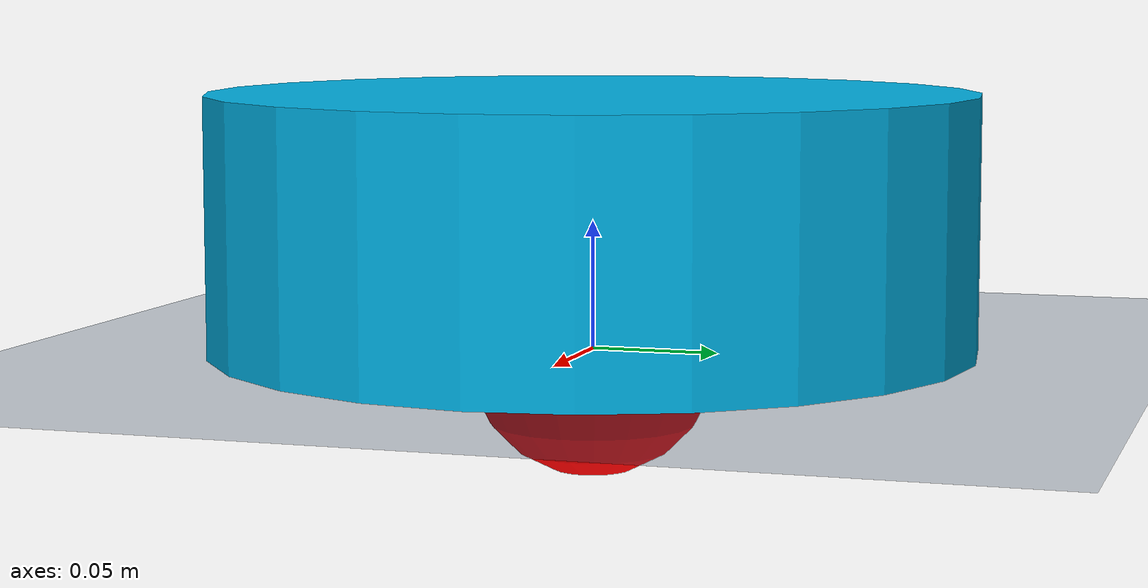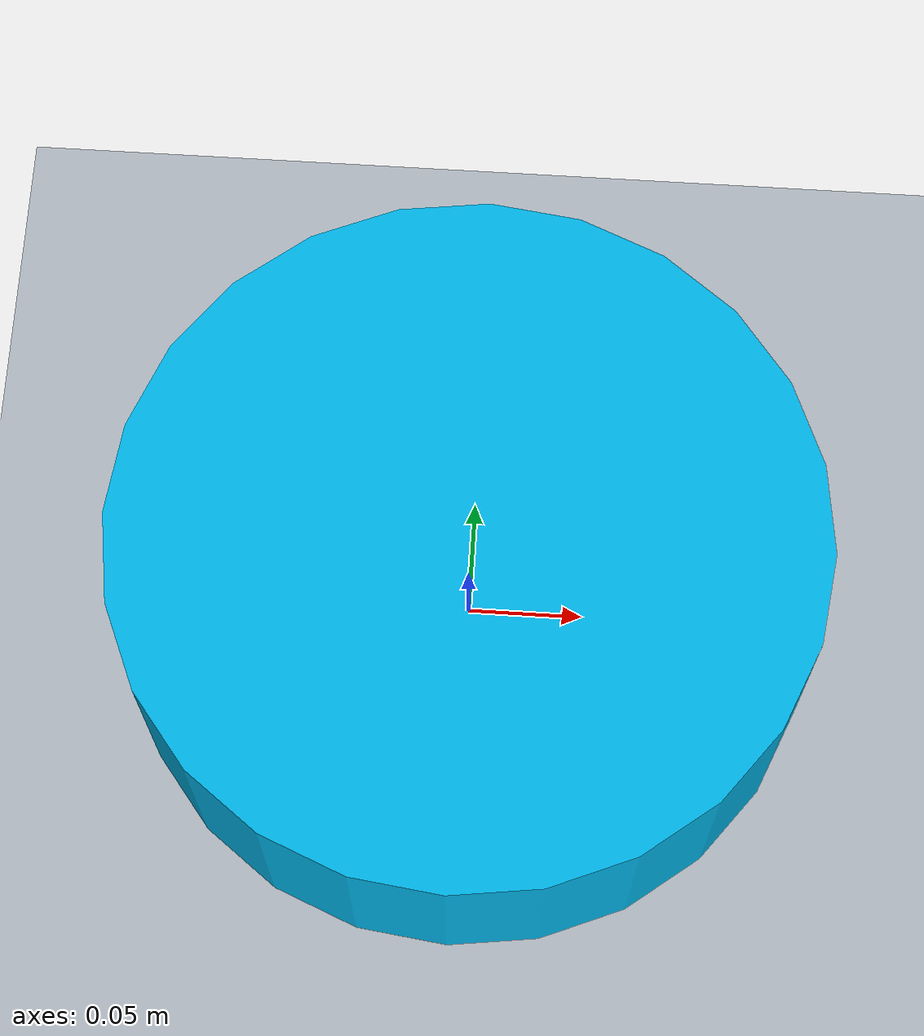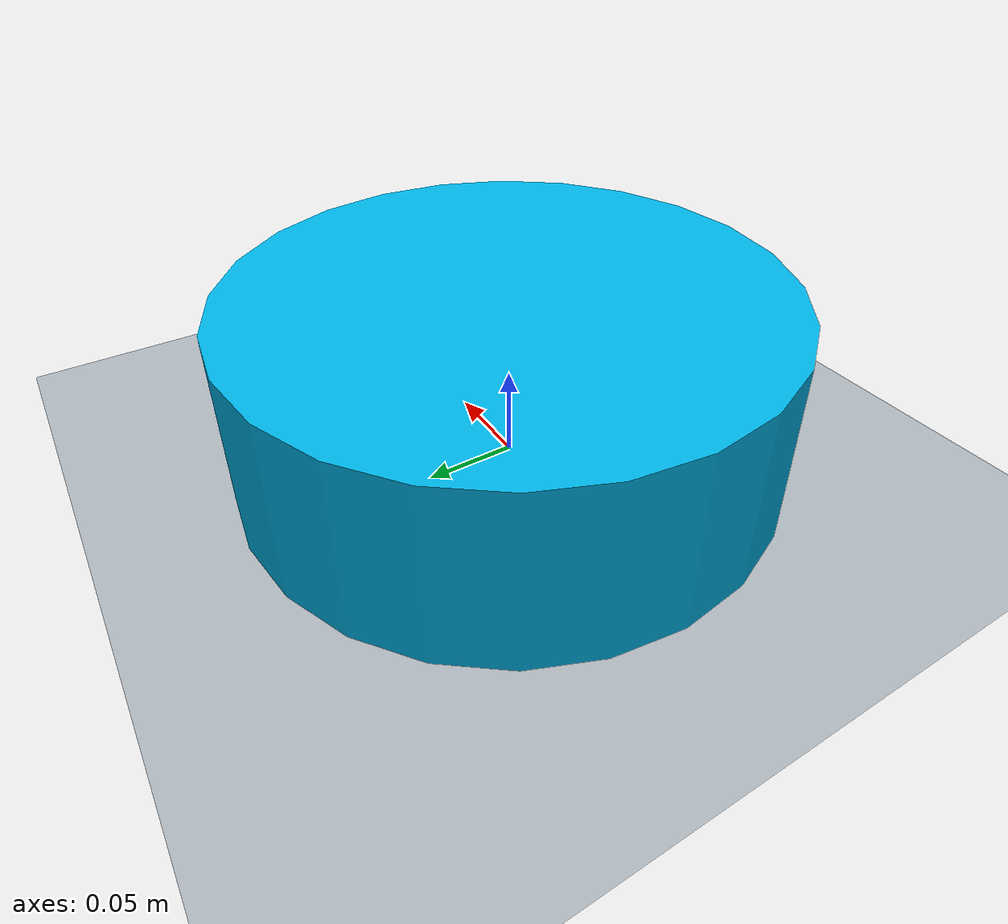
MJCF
<mujoco model="section_3_1_1_cable_system">

  <option gravity="0 0 -9.81" timestep="0.002"/>

  <asset>
    <texture name="grid" type="2d" builtin="checker"
             rgb1=".1 .2 .3" rgb2=".2 .3 .4" width="300" height="300"/>
    <material name="grid_mat" texture="grid" texrepeat="10 10"/>
  </asset>

  <worldbody>
    <light pos="0 0 10" dir="0 0 -1"/>
    <geom type="plane" size="10 10 0.1" material="grid_mat"/>
    <site name="anchor_b" pos="0 0 0" size="0.05" rgba="1 0 0 1"/>

    <body name="drone" pos="0 0 0.05">
      <freejoint name="drone_joint"/>
      <inertial pos="0 0 0" mass="1.5" diaginertia="0.01 0.01 0.015"/>
      <geom name="drone_geom" type="cylinder" size="0.15 0.05"
            rgba="0 0.7 0.9 1" mass="1.5"/>
      <site name="attachment_a" pos="0 0 0" size="0.02" rgba="1 1 0 1"/>
    </body>
  </worldbody>

  <tendon>
    <spatial name="cable_tether" limited="true" range="0 5.0"
             width="0.02" rgba="0 0.8 0 1">
      <site site="anchor_b"/>
      <site site="attachment_a"/>
    </spatial>
  </tendon>

  <actuator>
      <motor name="thrust" site="attachment_a" gear="0 0 1 0 0 0"/>
      <motor name="roll"   site="attachment_a" gear="0 0 0 1 0 0"/>
      <motor name="pitch"  site="attachment_a" gear="0 0 0 0 1 0"/>
      <motor name="yaw"    site="attachment_a" gear="0 0 0 0 0 1"/>
  </actuator>

</mujoco>
